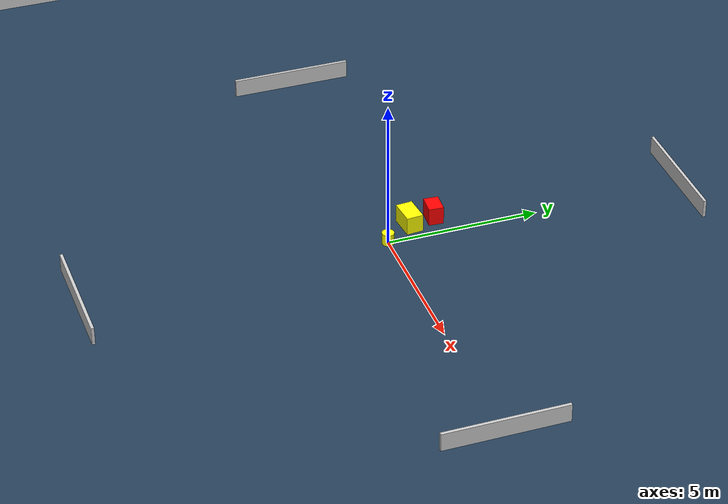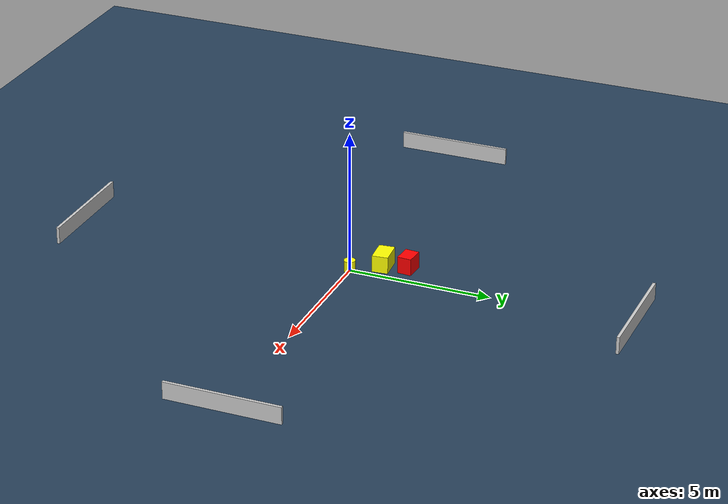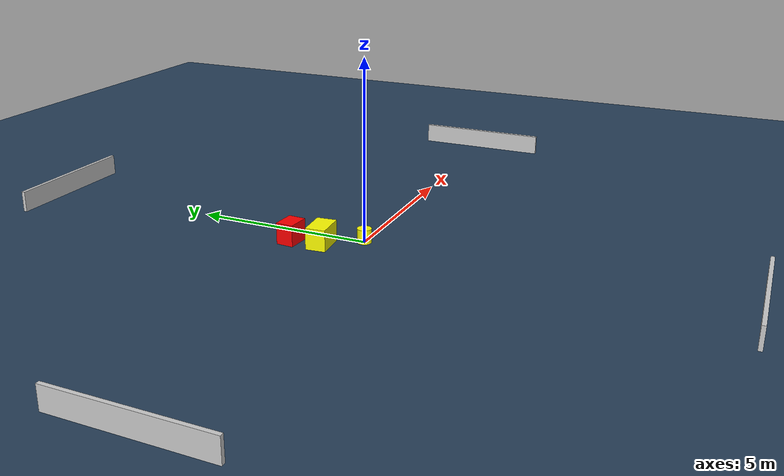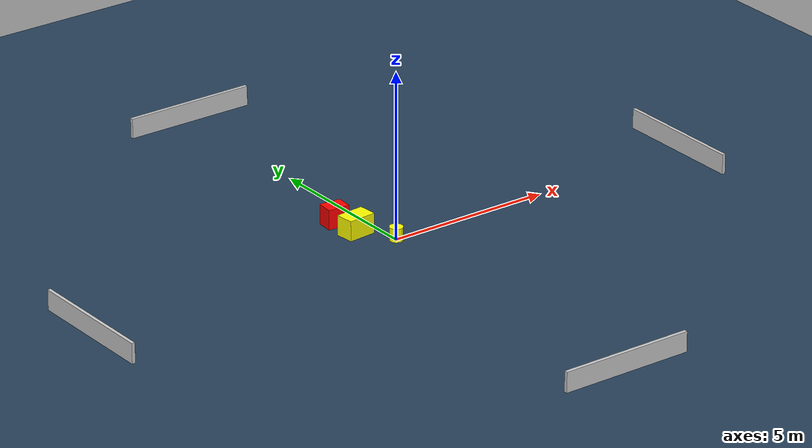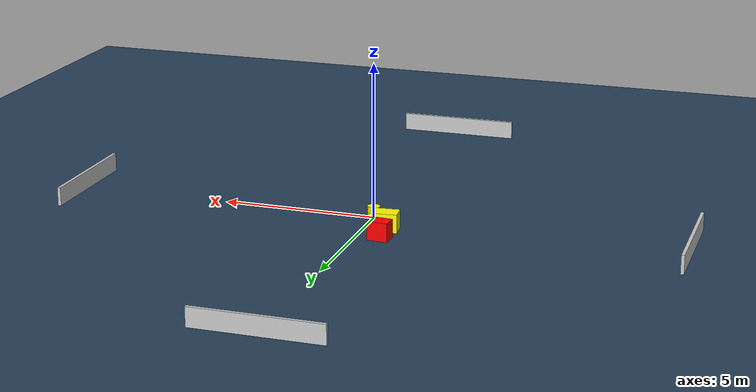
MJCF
<?xml version="1.0" ?>
<mujoco model="generated_environment">
  <option timestep="0.01" integrator="RK4" cone="elliptic"/>
  <default>
    <geom density="1"/>
  </default>
  <asset>
    <texture builtin="gradient" height="3072" name="skybox" rgb1="0.3 0.5 0.7" rgb2="0 0 0" type="skybox" width="512"/>
    <texture builtin="checker" height="300" name="groundplane" rgb1="0.2 0.3 0.4" rgb2="0.1 0.2 0.3" type="2d" width="300"/>
    <material name="groundplane" reflectance="0.2" texrepeat="5 5" texture="groundplane"/>
  </asset>
  <worldbody>
    <light dir="0 0 -1" directional="true" pos="0 0 1.5"/>
    <geom condim="3" friction="0.5 0.005 0.001" material="groundplane" name="floor" pos="0 0 0" size="0 0 0.05" type="plane"/>
    <body name="walls">
      <geom name="wall_1" condim="4" pos="-10.0 0.0 0.3" rgba="0.800000011920929 0.800000011920929 0.800000011920929 1.0" size="0.05 2.0 0.3" type="box"/>
      <geom name="wall_2" condim="4" pos="10.0 0.0 0.3" rgba="0.800000011920929 0.800000011920929 0.800000011920929 1.0" size="0.05 2.0 0.3" type="box"/>
      <geom name="wall_3" condim="4" pos="0.0 -10.0 0.3" rgba="0.800000011920929 0.800000011920929 0.800000011920929 1.0" size="2.0 0.05 0.3" type="box"/>
      <geom name="wall_4" condim="4" pos="0.0 10.0 0.3" rgba="0.800000011920929 0.800000011920929 0.800000011920929 1.0" size="2.0 0.05 0.3" type="box"/>
    </body>
    <body name="robot">
      <joint name="joint_x" type="slide" pos="0 0 0" axis="1 0 0"/>
      <joint name="joint_y" type="slide" pos="0 0 0" axis="0 1 0"/>
      <geom name="robot" type="cylinder" pos="0.0 0.0 0.2" size="0.2 0.2 0.0" mass="5.0" friction="1.0 0.005 0.0001" condim="4" rgba="1.0 1.0 0.0 1.0"/>
    </body>
    <body name="obstacle_1_movable">
      <geom name="obstacle_1_movable" condim="4" pos="-0.6678714685232345 0.9560236637314968 0.3" euler="0 0 275.02353152327794" friction="0.0 0.005 0.001" rgba="1.0 1.0 0.0 1.0" size="0.2760375643811673 0.42858495178120487 0.3" type="box" mass="0.1"/>
      <joint type="free"/>
    </body>
    <body name="obstacle_2_static">
      <geom name="obstacle_2_static" condim="4" pos="-0.7778953081970297 1.8086927718470134 0.3" euler="0 0 85.79903643902641" friction="0.0 0.005 0.001" rgba="1.0 0.0 0.0 1.0" size="0.24465253439861562 0.3262961687935985 0.3" type="box"/>
    </body>
  </worldbody>
  <actuator>
    <motor name="actuator_x" joint="joint_x" gear="1" ctrlrange="-1 1"/>
    <motor name="actuator_y" joint="joint_y" gear="1" ctrlrange="-1 1"/>
  </actuator>
</mujoco>
